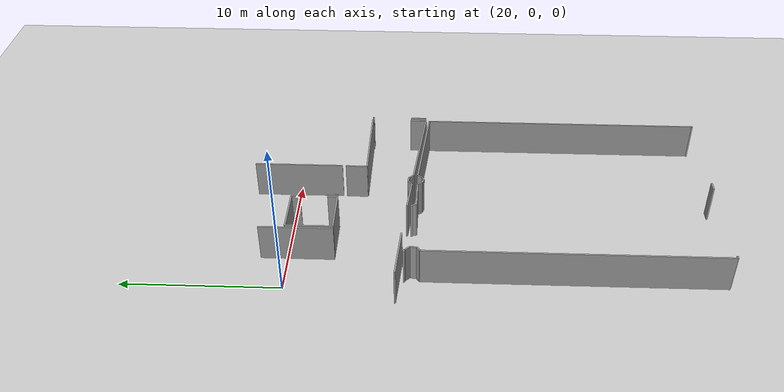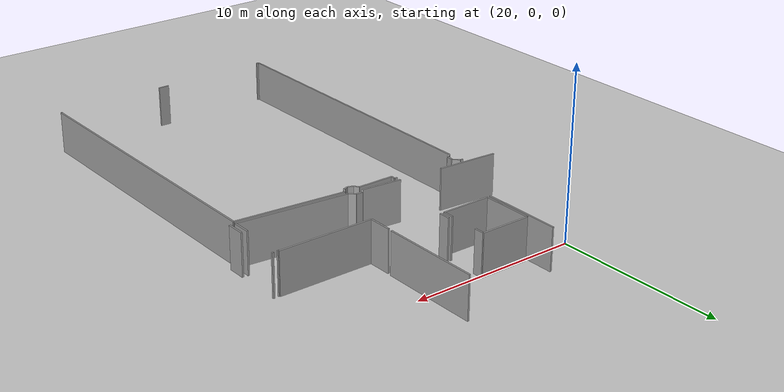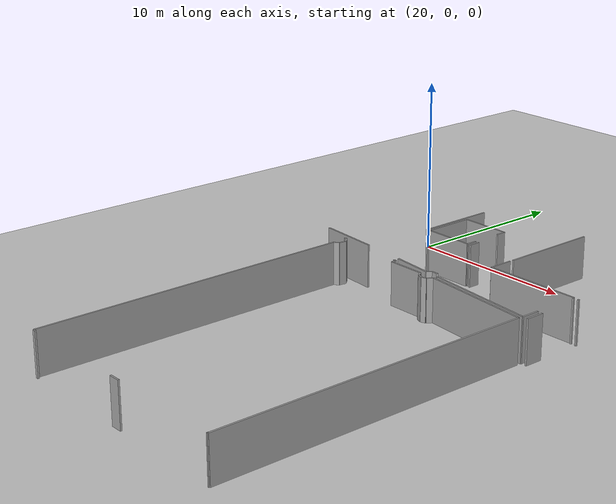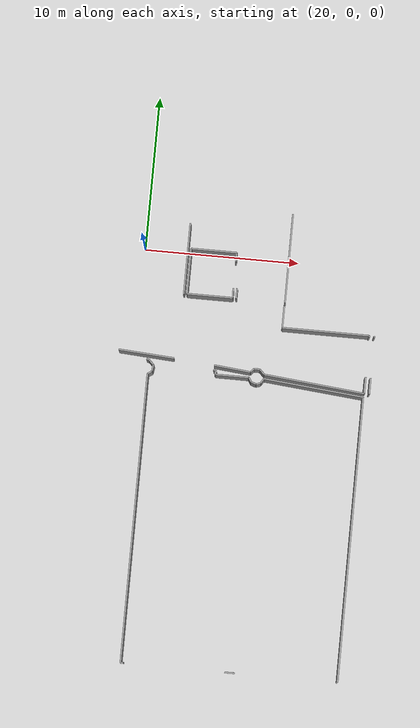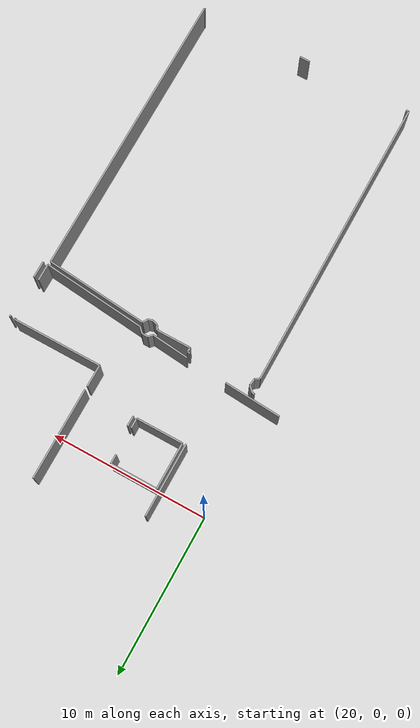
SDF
<sdf version="1.6">
 <world name="default">
  <model name="ground_plane">
   <static>1</static>
   <link name="link">
    <collision name="collision">
     <geometry><plane><normal>0 0 1</normal><size>100 100</size></plane></geometry>
     <surface><friction><ode><mu>100</mu><mu2>50</mu2></ode></friction></surface>
    </collision>
    <visual name="visual">
     <cast_shadows>0</cast_shadows>
     <geometry><plane><normal>0 0 1</normal><size>100 100</size></plane></geometry>
     <material>
      <script><uri>file://media/materials/scripts/gazebo.material</uri><name>Gazebo/Grey</name></script>
     </material>
    </visual>
   </link>
  </model>
  <model name="50041170">
   <static>1</static>
   <link name="Wall_227">
    <collision name="Wall_227_Collision">
     <geometry><box><size>1.05715464441 0.1 2.5</size></box></geometry>
     <pose>0.528577322205 0 1.25 0 0 0</pose>
    </collision>
    <visual name="Wall_227_Visual">
     <pose>0.528577322205 0 1.25 0 0 0</pose>
     <geometry><box><size>1.05715464441 0.1 2.5</size></box></geometry>
     <material>
      <script><uri>file://media/materials/scripts/gazebo.material</uri><name>Gazebo/Grey</name></script>
      <ambient>1 1 1 1</ambient>
     </material>
    </visual>
    <pose>101.74745327 -35.2623528292 0 0 0 1.57079632679</pose>
   </link>
   <link name="Wall_228">
    <collision name="Wall_228_Collision">
     <geometry><box><size>0.108406588176 0.1 2.5</size></box></geometry>
     <pose>0.0542032940878 0 1.25 0 0 0</pose>
    </collision>
    <visual name="Wall_228_Visual">
     <pose>0.0542032940878 0 1.25 0 0 0</pose>
     <geometry><box><size>0.108406588176 0.1 2.5</size></box></geometry>
     <material>
      <script><uri>file://media/materials/scripts/gazebo.material</uri><name>Gazebo/Grey</name></script>
      <ambient>1 1 1 1</ambient>
     </material>
    </visual>
    <pose>101.74745327 -31.5843990987 0 0 0 1.57079632679</pose>
   </link>
   <link name="Wall_266">
    <collision name="Wall_266_Collision">
     <geometry><box><size>1.40573133192 0.1 2.5</size></box></geometry>
     <pose>0.702865665958 0 1.25 0 0 0</pose>
    </collision>
    <visual name="Wall_266_Visual">
     <pose>0.702865665958 0 1.25 0 0 0</pose>
     <geometry><box><size>1.40573133192 0.1 2.5</size></box></geometry>
     <material>
      <script><uri>file://media/materials/scripts/gazebo.material</uri><name>Gazebo/Grey</name></script>
      <ambient>1 1 1 1</ambient>
     </material>
    </visual>
    <pose>95.7730316397 -30.0785122656 0 0 0 -1.57079632679</pose>
   </link>
   <link name="Wall_267">
    <collision name="Wall_267_Collision">
     <geometry><box><size>5.64996350481 0.1 2.5</size></box></geometry>
     <pose>2.8249817524 0 1.25 0 0 0</pose>
    </collision>
    <visual name="Wall_267_Visual">
     <pose>2.8249817524 0 1.25 0 0 0</pose>
     <geometry><box><size>5.64996350481 0.1 2.5</size></box></geometry>
     <material>
      <script><uri>file://media/materials/scripts/gazebo.material</uri><name>Gazebo/Grey</name></script>
      <ambient>1 1 1 1</ambient>
     </material>
    </visual>
    <pose>95.7730316397 -31.4842435975 0 0 0 0.0</pose>
   </link>
   <link name="Wall_268">
    <collision name="Wall_268_Collision">
     <geometry><box><size>0.0958395480943 0.1 2.5</size></box></geometry>
     <pose>0.0479197740472 0 1.25 0 0 0</pose>
    </collision>
    <visual name="Wall_268_Visual">
     <pose>0.0479197740472 0 1.25 0 0 0</pose>
     <geometry><box><size>0.0958395480943 0.1 2.5</size></box></geometry>
     <material>
      <script><uri>file://media/materials/scripts/gazebo.material</uri><name>Gazebo/Grey</name></script>
      <ambient>1 1 1 1</ambient>
     </material>
    </visual>
    <pose>101.422995145 -31.4842435975 0 0 0 -1.57079632679</pose>
   </link>
   <link name="Wall_269">
    <collision name="Wall_269_Collision">
     <geometry><box><size>1.07073720288 0.1 2.5</size></box></geometry>
     <pose>0.535368601441 0 1.25 0 0 0</pose>
    </collision>
    <visual name="Wall_269_Visual">
     <pose>0.535368601441 0 1.25 0 0 0</pose>
     <geometry><box><size>1.07073720288 0.1 2.5</size></box></geometry>
     <material>
      <script><uri>file://media/materials/scripts/gazebo.material</uri><name>Gazebo/Grey</name></script>
      <ambient>1 1 1 1</ambient>
     </material>
    </visual>
    <pose>101.422995145 -34.1776522484 0 0 0 -1.57079632679</pose>
   </link>
   <link name="Wall_270">
    <collision name="Wall_270_Collision">
     <geometry><box><size>6.57532959388 0.1 2.5</size></box></geometry>
     <pose>3.28766479694 0 1.25 0 0 0</pose>
    </collision>
    <visual name="Wall_270_Visual">
     <pose>3.28766479694 0 1.25 0 0 0</pose>
     <geometry><box><size>6.57532959388 0.1 2.5</size></box></geometry>
     <material>
      <script><uri>file://media/materials/scripts/gazebo.material</uri><name>Gazebo/Grey</name></script>
      <ambient>1 1 1 1</ambient>
     </material>
    </visual>
    <pose>101.422995145 -35.2483894513 0 0 0 3.04334359517</pose>
   </link>
   <link name="Wall_271">
    <collision name="Wall_271_Collision">
     <geometry><box><size>0.431117253486 0.1 2.5</size></box></geometry>
     <pose>0.215558626743 0 1.25 0 0 0</pose>
    </collision>
    <visual name="Wall_271_Visual">
     <pose>0.215558626743 0 1.25 0 0 0</pose>
     <geometry><box><size>0.431117253486 0.1 2.5</size></box></geometry>
     <material>
      <script><uri>file://media/materials/scripts/gazebo.material</uri><name>Gazebo/Grey</name></script>
      <ambient>1 1 1 1</ambient>
     </material>
    </visual>
    <pose>94.8793754562 -34.6034083336 0 0 0 2.35598628699</pose>
   </link>
   <link name="Wall_272">
    <collision name="Wall_272_Collision">
     <geometry><box><size>0.377461377621 0.1 2.5</size></box></geometry>
     <pose>0.188730688811 0 1.25 0 0 0</pose>
    </collision>
    <visual name="Wall_272_Visual">
     <pose>0.188730688811 0 1.25 0 0 0</pose>
     <geometry><box><size>0.377461377621 0.1 2.5</size></box></geometry>
     <material>
      <script><uri>file://media/materials/scripts/gazebo.material</uri><name>Gazebo/Grey</name></script>
      <ambient>1 1 1 1</ambient>
     </material>
    </visual>
    <pose>94.5745929993 -34.2984989369 0 0 0 3.12242244929</pose>
   </link>
   <link name="Wall_273">
    <collision name="Wall_273_Collision">
     <geometry><box><size>0.323683892277 0.1 2.5</size></box></geometry>
     <pose>0.161841946138 0 1.25 0 0 0</pose>
    </collision>
    <visual name="Wall_273_Visual">
     <pose>0.161841946138 0 1.25 0 0 0</pose>
     <geometry><box><size>0.323683892277 0.1 2.5</size></box></geometry>
     <material>
      <script><uri>file://media/materials/scripts/gazebo.material</uri><name>Gazebo/Grey</name></script>
      <ambient>1 1 1 1</ambient>
     </material>
    </visual>
    <pose>94.1972009774 -34.2912633683 0 0 0 -2.30847948516</pose>
   </link>
   <link name="Wall_274">
    <collision name="Wall_274_Collision">
     <geometry><box><size>2.3775336341 0.1 2.5</size></box></geometry>
     <pose>1.18876681705 0 1.25 0 0 0</pose>
    </collision>
    <visual name="Wall_274_Visual">
     <pose>1.18876681705 0 1.25 0 0 0</pose>
     <geometry><box><size>2.3775336341 0.1 2.5</size></box></geometry>
     <material>
      <script><uri>file://media/materials/scripts/gazebo.material</uri><name>Gazebo/Grey</name></script>
      <ambient>1 1 1 1</ambient>
     </material>
    </visual>
    <pose>93.9794992225 -34.5307987687 0 0 0 3.04373029994</pose>
   </link>
   <link name="Wall_275">
    <collision name="Wall_275_Collision">
     <geometry><box><size>3.61053177595 0.1 2.5</size></box></geometry>
     <pose>1.80526588798 0 1.25 0 0 0</pose>
    </collision>
    <visual name="Wall_275_Visual">
     <pose>1.80526588798 0 1.25 0 0 0</pose>
     <geometry><box><size>3.61053177595 0.1 2.5</size></box></geometry>
     <material>
      <script><uri>file://media/materials/scripts/gazebo.material</uri><name>Gazebo/Grey</name></script>
      <ambient>1 1 1 1</ambient>
     </material>
    </visual>
    <pose>88.9827679223 -34.0773698074 0 0 0 3.07456610682</pose>
   </link>
   <link name="Wall_285">
    <collision name="Wall_285_Collision">
     <geometry><box><size>0.0694360699438 0.1 2.5</size></box></geometry>
     <pose>0.0347180349719 0 1.25 0 0 0</pose>
    </collision>
    <visual name="Wall_285_Visual">
     <pose>0.0347180349719 0 1.25 0 0 0</pose>
     <geometry><box><size>0.0694360699438 0.1 2.5</size></box></geometry>
     <material>
      <script><uri>file://media/materials/scripts/gazebo.material</uri><name>Gazebo/Grey</name></script>
      <ambient>1 1 1 1</ambient>
     </material>
    </visual>
    <pose>101.365364476 -53.9346894735 0 0 0 3.14159265359</pose>
   </link>
   <link name="Wall_286">
    <collision name="Wall_286_Collision">
     <geometry><box><size>0.656405699597 0.1 2.5</size></box></geometry>
     <pose>0.328202849798 0 1.25 0 0 0</pose>
    </collision>
    <visual name="Wall_286_Visual">
     <pose>0.328202849798 0 1.25 0 0 0</pose>
     <geometry><box><size>0.656405699597 0.1 2.5</size></box></geometry>
     <material>
      <script><uri>file://media/materials/scripts/gazebo.material</uri><name>Gazebo/Grey</name></script>
      <ambient>1 1 1 1</ambient>
     </material>
    </visual>
    <pose>94.7387261591 -53.9346894735 0 0 0 3.14159265359</pose>
   </link>
   <link name="Wall_287">
    <collision name="Wall_287_Collision">
     <geometry><box><size>0.171749547777 0.1 2.5</size></box></geometry>
     <pose>0.0858747738885 0 1.25 0 0 0</pose>
    </collision>
    <visual name="Wall_287_Visual">
     <pose>0.0858747738885 0 1.25 0 0 0</pose>
     <geometry><box><size>0.171749547777 0.1 2.5</size></box></geometry>
     <material>
      <script><uri>file://media/materials/scripts/gazebo.material</uri><name>Gazebo/Grey</name></script>
      <ambient>1 1 1 1</ambient>
     </material>
    </visual>
    <pose>87.5430167243 -53.9346894735 0 0 0 3.14159265359</pose>
   </link>
   <link name="Wall_288">
    <collision name="Wall_288_Collision">
     <geometry><box><size>18.6973437847 0.1 2.5</size></box></geometry>
     <pose>9.34867189236 0 1.25 0 0 0</pose>
    </collision>
    <visual name="Wall_288_Visual">
     <pose>9.34867189236 0 1.25 0 0 0</pose>
     <geometry><box><size>18.6973437847 0.1 2.5</size></box></geometry>
     <material>
      <script><uri>file://media/materials/scripts/gazebo.material</uri><name>Gazebo/Grey</name></script>
      <ambient>1 1 1 1</ambient>
     </material>
    </visual>
    <pose>87.3712671765 -53.9346894735 0 0 0 1.57079632679</pose>
   </link>
   <link name="Wall_289">
    <collision name="Wall_289_Collision">
     <geometry><box><size>0.328451645632 0.1 2.5</size></box></geometry>
     <pose>0.164225822816 0 1.25 0 0 0</pose>
    </collision>
    <visual name="Wall_289_Visual">
     <pose>0.164225822816 0 1.25 0 0 0</pose>
     <geometry><box><size>0.328451645632 0.1 2.5</size></box></geometry>
     <material>
      <script><uri>file://media/materials/scripts/gazebo.material</uri><name>Gazebo/Grey</name></script>
      <ambient>1 1 1 1</ambient>
     </material>
    </visual>
    <pose>87.3712671765 -35.2373456888 0 0 0 0.594862823935</pose>
   </link>
   <link name="Wall_290">
    <collision name="Wall_290_Collision">
     <geometry><box><size>0.424928393124 0.1 2.5</size></box></geometry>
     <pose>0.212464196562 0 1.25 0 0 0</pose>
    </collision>
    <visual name="Wall_290_Visual">
     <pose>0.212464196562 0 1.25 0 0 0</pose>
     <geometry><box><size>0.424928393124 0.1 2.5</size></box></geometry>
     <material>
      <script><uri>file://media/materials/scripts/gazebo.material</uri><name>Gazebo/Grey</name></script>
      <ambient>1 1 1 1</ambient>
     </material>
    </visual>
    <pose>87.6432991654 -35.0532829805 0 0 0 1.43354647152</pose>
   </link>
   <link name="Wall_291">
    <collision name="Wall_291_Collision">
     <geometry><box><size>0.45158253136 0.1 2.5</size></box></geometry>
     <pose>0.22579126568 0 1.25 0 0 0</pose>
    </collision>
    <visual name="Wall_291_Visual">
     <pose>0.22579126568 0 1.25 0 0 0</pose>
     <geometry><box><size>0.45158253136 0.1 2.5</size></box></geometry>
     <material>
      <script><uri>file://media/materials/scripts/gazebo.material</uri><name>Gazebo/Grey</name></script>
      <ambient>1 1 1 1</ambient>
     </material>
    </visual>
    <pose>87.7014375932 -34.6323506077 0 0 0 2.35639325783</pose>
   </link>
   <link name="Wall_292">
    <collision name="Wall_292_Collision">
     <geometry><box><size>0.162314511175 0.1 2.5</size></box></geometry>
     <pose>0.0811572555874 0 1.25 0 0 0</pose>
    </collision>
    <visual name="Wall_292_Visual">
     <pose>0.0811572555874 0 1.25 0 0 0</pose>
     <geometry><box><size>0.162314511175 0.1 2.5</size></box></geometry>
     <material>
      <script><uri>file://media/materials/scripts/gazebo.material</uri><name>Gazebo/Grey</name></script>
      <ambient>1 1 1 1</ambient>
     </material>
    </visual>
    <pose>87.3820570594 -34.3130970137 0 0 0 2.96152930489</pose>
   </link>
   <link name="Wall_295">
    <collision name="Wall_295_Collision">
     <geometry><box><size>0.167752084792 0.1 2.5</size></box></geometry>
     <pose>0.083876042396 0 1.25 0 0 0</pose>
    </collision>
    <visual name="Wall_295_Visual">
     <pose>0.083876042396 0 1.25 0 0 0</pose>
     <geometry><box><size>0.167752084792 0.1 2.5</size></box></geometry>
     <material>
      <script><uri>file://media/materials/scripts/gazebo.material</uri><name>Gazebo/Grey</name></script>
      <ambient>1 1 1 1</ambient>
     </material>
    </visual>
    <pose>91.5898575101 -34.5975691029 0 0 0 -0.0992921748341</pose>
   </link>
   <link name="Wall_296">
    <collision name="Wall_296_Collision">
     <geometry><box><size>0.275968523948 0.1 2.5</size></box></geometry>
     <pose>0.137984261974 0 1.25 0 0 0</pose>
    </collision>
    <visual name="Wall_296_Visual">
     <pose>0.137984261974 0 1.25 0 0 0</pose>
     <geometry><box><size>0.275968523948 0.1 2.5</size></box></geometry>
     <material>
      <script><uri>file://media/materials/scripts/gazebo.material</uri><name>Gazebo/Grey</name></script>
      <ambient>1 1 1 1</ambient>
     </material>
    </visual>
    <pose>91.7567833455 -34.6141982165 0 0 0 -1.63155095837</pose>
   </link>
   <link name="Wall_297">
    <collision name="Wall_297_Collision">
     <geometry><box><size>2.17409793405 0.1 2.5</size></box></geometry>
     <pose>1.08704896703 0 1.25 0 0 0</pose>
    </collision>
    <visual name="Wall_297_Visual">
     <pose>1.08704896703 0 1.25 0 0 0</pose>
     <geometry><box><size>2.17409793405 0.1 2.5</size></box></geometry>
     <material>
      <script><uri>file://media/materials/scripts/gazebo.material</uri><name>Gazebo/Grey</name></script>
      <ambient>1 1 1 1</ambient>
     </material>
    </visual>
    <pose>91.7400272921 -34.8896575799 0 0 0 0.0</pose>
   </link>
   <link name="Wall_298">
    <collision name="Wall_298_Collision">
     <geometry><box><size>0.323434860336 0.1 2.5</size></box></geometry>
     <pose>0.161717430168 0 1.25 0 0 0</pose>
    </collision>
    <visual name="Wall_298_Visual">
     <pose>0.161717430168 0 1.25 0 0 0</pose>
     <geometry><box><size>0.323434860336 0.1 2.5</size></box></geometry>
     <material>
      <script><uri>file://media/materials/scripts/gazebo.material</uri><name>Gazebo/Grey</name></script>
      <ambient>1 1 1 1</ambient>
     </material>
    </visual>
    <pose>93.9141252261 -34.8896575799 0 0 0 -1.00217072071</pose>
   </link>
   <link name="Wall_299">
    <collision name="Wall_299_Collision">
     <geometry><box><size>0.339845153449 0.1 2.5</size></box></geometry>
     <pose>0.169922576725 0 1.25 0 0 0</pose>
    </collision>
    <visual name="Wall_299_Visual">
     <pose>0.169922576725 0 1.25 0 0 0</pose>
     <geometry><box><size>0.339845153449 0.1 2.5</size></box></geometry>
     <material>
      <script><uri>file://media/materials/scripts/gazebo.material</uri><name>Gazebo/Grey</name></script>
      <ambient>1 1 1 1</ambient>
     </material>
    </visual>
    <pose>94.0882866301 -35.1621973279 0 0 0 -0.348802915762</pose>
   </link>
   <link name="Wall_300">
    <collision name="Wall_300_Collision">
     <geometry><box><size>0.298374663587 0.1 2.5</size></box></geometry>
     <pose>0.149187331794 0 1.25 0 0 0</pose>
    </collision>
    <visual name="Wall_300_Visual">
     <pose>0.149187331794 0 1.25 0 0 0</pose>
     <geometry><box><size>0.298374663587 0.1 2.5</size></box></geometry>
     <material>
      <script><uri>file://media/materials/scripts/gazebo.material</uri><name>Gazebo/Grey</name></script>
      <ambient>1 1 1 1</ambient>
     </material>
    </visual>
    <pose>94.4076671638 -35.2783472438 0 0 0 0.321616019216</pose>
   </link>
   <link name="Wall_301">
    <collision name="Wall_301_Collision">
     <geometry><box><size>0.362400409141 0.1 2.5</size></box></geometry>
     <pose>0.181200204571 0 1.25 0 0 0</pose>
    </collision>
    <visual name="Wall_301_Visual">
     <pose>0.181200204571 0 1.25 0 0 0</pose>
     <geometry><box><size>0.362400409141 0.1 2.5</size></box></geometry>
     <material>
      <script><uri>file://media/materials/scripts/gazebo.material</uri><name>Gazebo/Grey</name></script>
      <ambient>1 1 1 1</ambient>
     </material>
    </visual>
    <pose>94.6907429152 -35.1840309733 0 0 0 0.999795582716</pose>
   </link>
   <link name="Wall_302">
    <collision name="Wall_302_Collision">
     <geometry><box><size>6.51986229775 0.1 2.5</size></box></geometry>
     <pose>3.25993114887 0 1.25 0 0 0</pose>
    </collision>
    <visual name="Wall_302_Visual">
     <pose>3.25993114887 0 1.25 0 0 0</pose>
     <geometry><box><size>6.51986229775 0.1 2.5</size></box></geometry>
     <material>
      <script><uri>file://media/materials/scripts/gazebo.material</uri><name>Gazebo/Grey</name></script>
      <ambient>1 1 1 1</ambient>
     </material>
    </visual>
    <pose>94.8866110247 -34.8791215766 0 0 0 -0.0933956077056</pose>
   </link>
   <link name="Wall_303">
    <collision name="Wall_303_Collision">
     <geometry><box><size>18.4475306281 0.1 2.5</size></box></geometry>
     <pose>9.22376531406 0 1.25 0 0 0</pose>
    </collision>
    <visual name="Wall_303_Visual">
     <pose>9.22376531406 0 1.25 0 0 0</pose>
     <geometry><box><size>18.4475306281 0.1 2.5</size></box></geometry>
     <material>
      <script><uri>file://media/materials/scripts/gazebo.material</uri><name>Gazebo/Grey</name></script>
      <ambient>1 1 1 1</ambient>
     </material>
    </visual>
    <pose>101.378058456 -35.4871632128 0 0 0 -1.57148443954</pose>
   </link>
   <link name="Wall_425">
    <collision name="Wall_425_Collision">
     <geometry><box><size>4.6459966361 0.1 2.5</size></box></geometry>
     <pose>2.32299831805 0 1.25 0 0 0</pose>
    </collision>
    <visual name="Wall_425_Visual">
     <pose>2.32299831805 0 1.25 0 0 0</pose>
     <geometry><box><size>4.6459966361 0.1 2.5</size></box></geometry>
     <material>
      <script><uri>file://media/materials/scripts/gazebo.material</uri><name>Gazebo/Grey</name></script>
      <ambient>1 1 1 1</ambient>
     </material>
    </visual>
    <pose>89.2332201453 -29.8943226175 0 0 0 1.57079632679</pose>
   </link>
   <link name="Wall_430">
    <collision name="Wall_430_Collision">
     <geometry><box><size>5.79416711625 0.1 2.5</size></box></geometry>
     <pose>2.89708355812 0 1.25 0 0 0</pose>
    </collision>
    <visual name="Wall_430_Visual">
     <pose>2.89708355812 0 1.25 0 0 0</pose>
     <geometry><box><size>5.79416711625 0.1 2.5</size></box></geometry>
     <material>
      <script><uri>file://media/materials/scripts/gazebo.material</uri><name>Gazebo/Grey</name></script>
      <ambient>1 1 1 1</ambient>
     </material>
    </visual>
    <pose>95.7960077433 -29.8583986544 0 0 0 1.57079632679</pose>
   </link>
   <link name="Wall_433">
    <collision name="Wall_433_Collision">
     <geometry><box><size>0.654645391197 0.1 2.5</size></box></geometry>
     <pose>0.327322695598 0 1.25 0 0 0</pose>
    </collision>
    <visual name="Wall_433_Visual">
     <pose>0.327322695598 0 1.25 0 0 0</pose>
     <geometry><box><size>0.654645391197 0.1 2.5</size></box></geometry>
     <material>
      <script><uri>file://media/materials/scripts/gazebo.material</uri><name>Gazebo/Grey</name></script>
      <ambient>1 1 1 1</ambient>
     </material>
    </visual>
    <pose>92.6294944623 -29.203770112 0 0 0 -1.57797091767</pose>
   </link>
   <link name="Wall_439">
    <collision name="Wall_439_Collision">
     <geometry><box><size>2.95795119165 0.1 2.5</size></box></geometry>
     <pose>1.47897559582 0 1.25 0 0 0</pose>
    </collision>
    <visual name="Wall_439_Visual">
     <pose>1.47897559582 0 1.25 0 0 0</pose>
     <geometry><box><size>2.95795119165 0.1 2.5</size></box></geometry>
     <material>
      <script><uri>file://media/materials/scripts/gazebo.material</uri><name>Gazebo/Grey</name></script>
      <ambient>1 1 1 1</ambient>
     </material>
    </visual>
    <pose>92.3940211355 -29.843546698 0 0 0 3.14159265359</pose>
   </link>
   <link name="Wall_440">
    <collision name="Wall_440_Collision">
     <geometry><box><size>2.94804988734 0.1 2.5</size></box></geometry>
     <pose>1.47402494367 0 1.25 0 0 0</pose>
    </collision>
    <visual name="Wall_440_Visual">
     <pose>1.47402494367 0 1.25 0 0 0</pose>
     <geometry><box><size>2.94804988734 0.1 2.5</size></box></geometry>
     <material>
      <script><uri>file://media/materials/scripts/gazebo.material</uri><name>Gazebo/Grey</name></script>
      <ambient>1 1 1 1</ambient>
     </material>
    </visual>
    <pose>89.4360699438 -29.843546698 0 0 0 1.57079632679</pose>
   </link>
   <link name="Wall_441">
    <collision name="Wall_441_Collision">
     <geometry><box><size>2.95388911809 0.1 2.5</size></box></geometry>
     <pose>1.47694455904 0 1.25 0 0 0</pose>
    </collision>
    <visual name="Wall_441_Visual">
     <pose>1.47694455904 0 1.25 0 0 0</pose>
     <geometry><box><size>2.95388911809 0.1 2.5</size></box></geometry>
     <material>
      <script><uri>file://media/materials/scripts/gazebo.material</uri><name>Gazebo/Grey</name></script>
      <ambient>1 1 1 1</ambient>
     </material>
    </visual>
    <pose>89.4360699438 -26.8954968106 0 0 0 0.0</pose>
   </link>
   <link name="Wall_442">
    <collision name="Wall_442_Collision">
     <geometry><box><size>0.580622639713 0.1 2.5</size></box></geometry>
     <pose>0.290311319857 0 1.25 0 0 0</pose>
    </collision>
    <visual name="Wall_442_Visual">
     <pose>0.290311319857 0 1.25 0 0 0</pose>
     <geometry><box><size>0.580622639713 0.1 2.5</size></box></geometry>
     <material>
      <script><uri>file://media/materials/scripts/gazebo.material</uri><name>Gazebo/Grey</name></script>
      <ambient>1 1 1 1</ambient>
     </material>
    </visual>
    <pose>92.3899590619 -26.8954968106 0 0 0 -1.57079632679</pose>
   </link>
   <link name="Wall_443">
    <collision name="Wall_443_Collision">
     <geometry><box><size>0.633061809003 0.1 2.5</size></box></geometry>
     <pose>0.316530904502 0 1.25 0 0 0</pose>
    </collision>
    <visual name="Wall_443_Visual">
     <pose>0.316530904502 0 1.25 0 0 0</pose>
     <geometry><box><size>0.633061809003 0.1 2.5</size></box></geometry>
     <material>
      <script><uri>file://media/materials/scripts/gazebo.material</uri><name>Gazebo/Grey</name></script>
      <ambient>1 1 1 1</ambient>
     </material>
    </visual>
    <pose>92.3899590619 -29.2104979214 0 0 0 -1.56437973148</pose>
   </link>
   <pose>-66.45 26.9909095237 0 0 0 0</pose>
  </model>
 </world>
</sdf>
